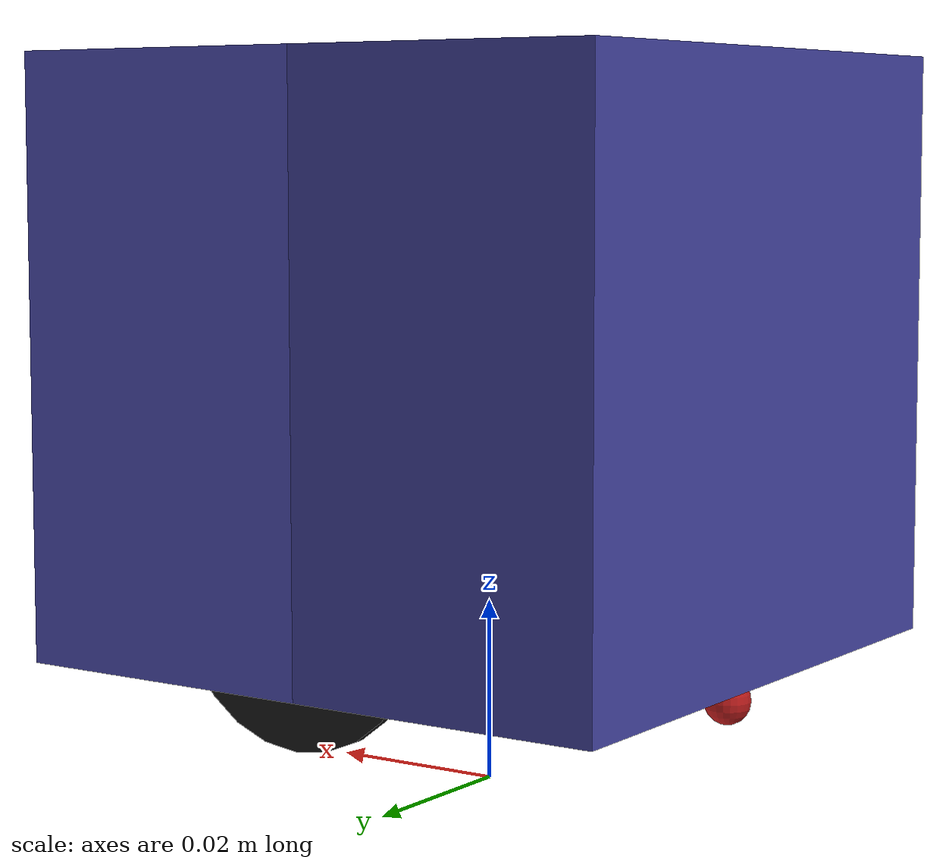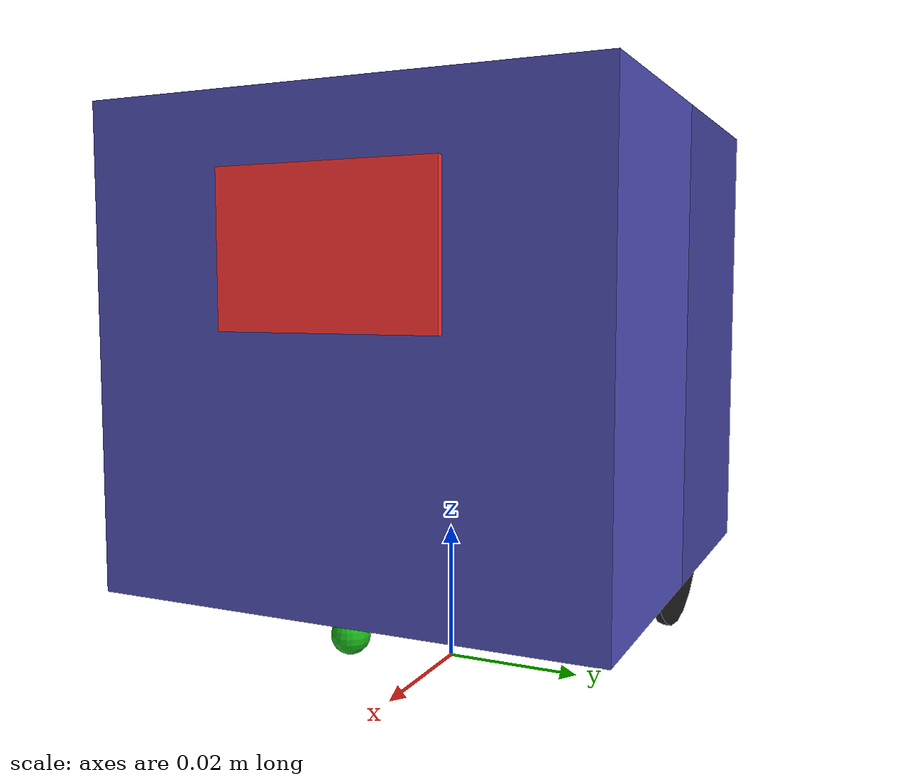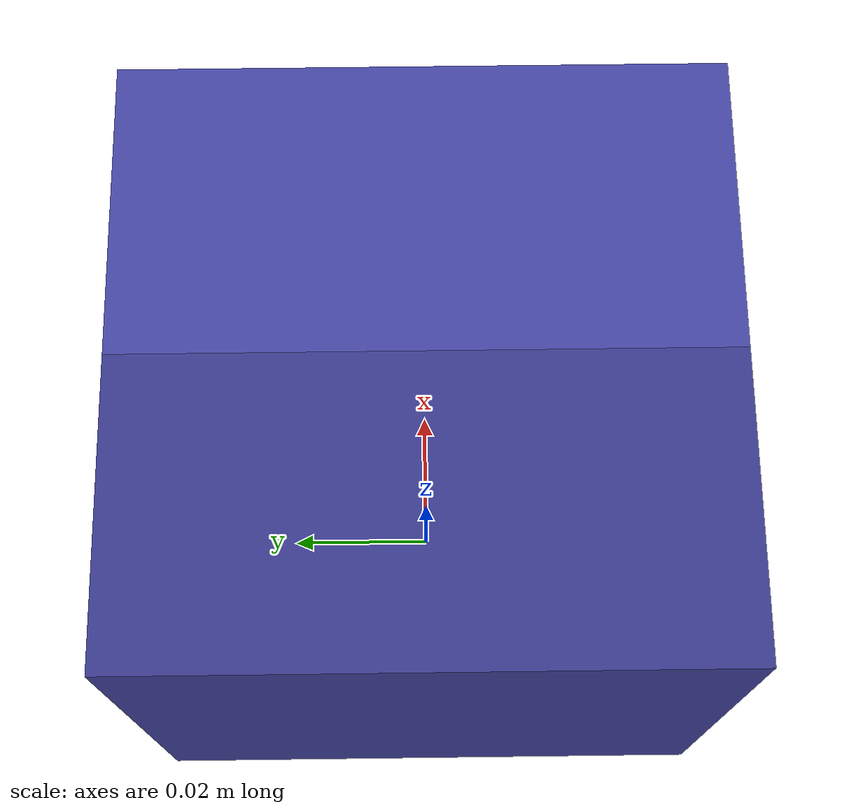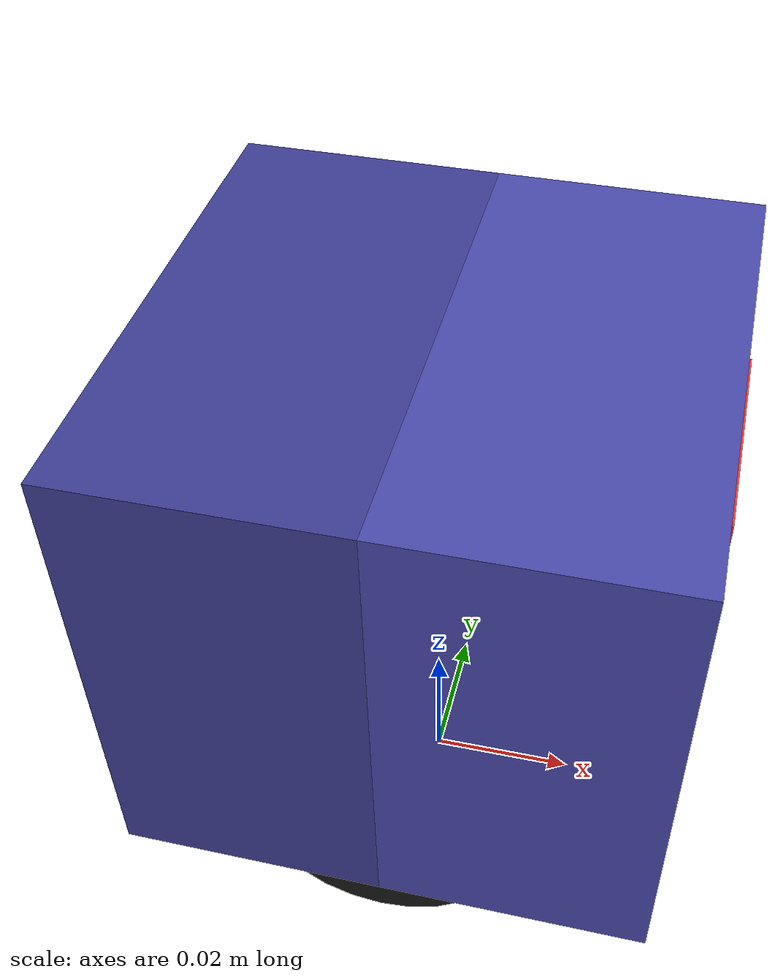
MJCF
<mujoco model="little_car">
  <compiler angle="radian" autolimits="true"/>
  <default>
    <geom condim="4"/>
    <joint damping="0.01" armature="0.0001"/>
  </default>
  <worldbody>
    <body name="car" pos="0 0 0.010000">
      <freejoint name="car_freejoint"/>
      <inertial pos="0.000000 0 0.037500" mass="0.350000"
                diaginertia="0.000266 0.000266 0.000286"/>
      <geom name="front_chassis_collision" type="box" pos="0.017500 0 0.037500"
            size="0.017500 0.035000 0.032500"
            rgba="0.3 0.3 0.7 1"/>
      <geom name="rear_chassis_collision" type="box" pos="-0.017500 0 0.037500"
            size="0.017500 0.035000 0.032500"
            rgba="0.25 0.25 0.6 1"/>
      <geom name="front_marker" type="box" pos="0.034000 0 0.050500"
            size="0.002000 0.015000 0.010000"
            rgba="1.0 0.2 0.2 1" contype="0" conaffinity="0"/>

      <body name="rear_support_body" pos="-0.030000 0.000000 0.002500">
        <joint name="rear_caster_joint" type="ball" damping="0.0001"/>
        <inertial pos="0 0 0" mass="0.025000"
                  diaginertia="0.000001 0.000001 0.000001"/>
        <geom name="rear_support" type="sphere"
              pos="0 0 0"
              size="0.002500"
              friction="0.000000 0.000000 0.000000"
              rgba="0.7 0.1 0.1 1"/>
      </body>

      <body name="front_support_body" pos="0.030000 0.000000 0.002500">
        <joint name="front_caster_joint" type="ball" damping="0.0001"/>
        <inertial pos="0 0 0" mass="0.025000"
                  diaginertia="0.000001 0.000001 0.000001"/>
        <geom name="front_support" type="sphere"
              pos="0 0 0"
              size="0.002500"
              friction="0.000000 0.000000 0.000000"
              rgba="0.1 0.7 0.1 1"/>
      </body>

      <body name="left_wheel" pos="0.000000 0.034000 0.015000">
        <inertial pos="0 0 0" mass="0.050000"
                  diaginertia="0.000003 0.000006 0.000003"/>
        <joint name="left_wheel_joint" type="hinge" axis="0 1 0"/>
        <geom name="left_wheel_collision" type="cylinder" size="0.015000 0.000500"
              euler="1.57079632679 0 0" rgba="0.1 0.1 0.1 1"/>
      </body>

      <body name="right_wheel" pos="0.000000 -0.034000 0.015000">
        <inertial pos="0 0 0" mass="0.050000"
                  diaginertia="0.000003 0.000006 0.000003"/>
        <joint name="right_wheel_joint" type="hinge" axis="0 1 0"/>
        <geom name="right_wheel_collision" type="cylinder" size="0.015000 0.000500"
              euler="1.57079632679 0 0" rgba="0.1 0.1 0.1 1"/>
      </body>
    </body>
  </worldbody>
  <contact>
    <exclude body1="car" body2="left_wheel"/>
    <exclude body1="car" body2="right_wheel"/>
  </contact>
  <actuator>
    <velocity name="left_wheel_drive" joint="left_wheel_joint"
              ctrlrange="-25.000000 25.000000"
              kv="0.750000" forcerange="-0.500000 0.500000"/>
    <velocity name="right_wheel_drive" joint="right_wheel_joint"
              ctrlrange="-25.000000 25.000000"
              kv="0.750000" forcerange="-0.500000 0.500000"/>
  </actuator>
</mujoco>
